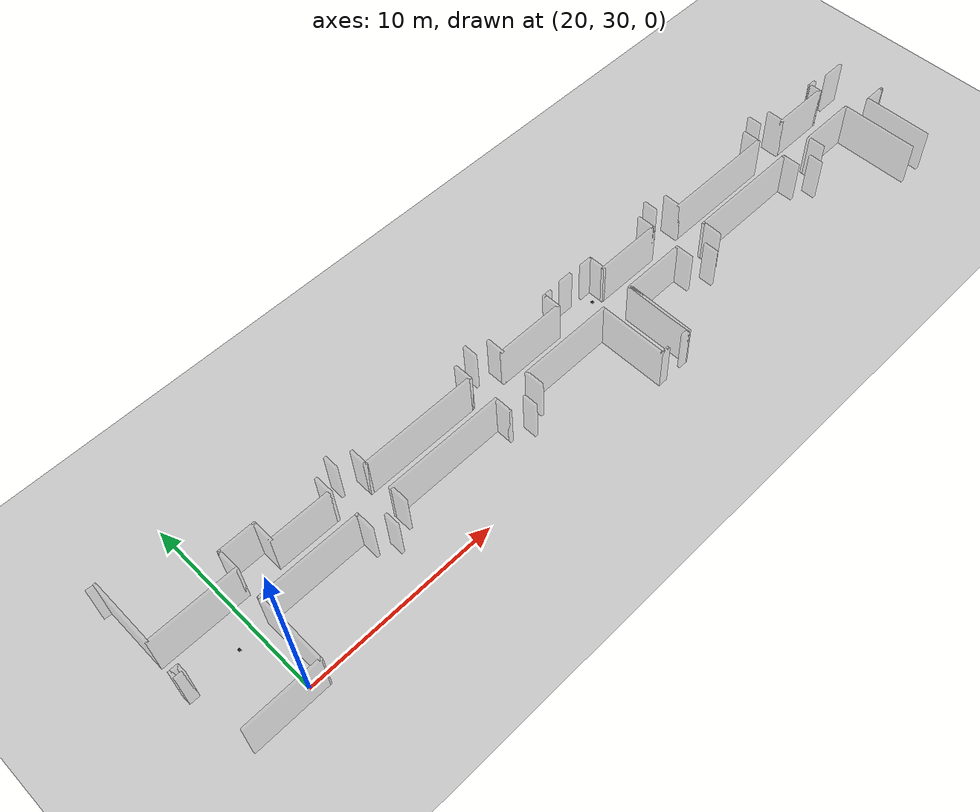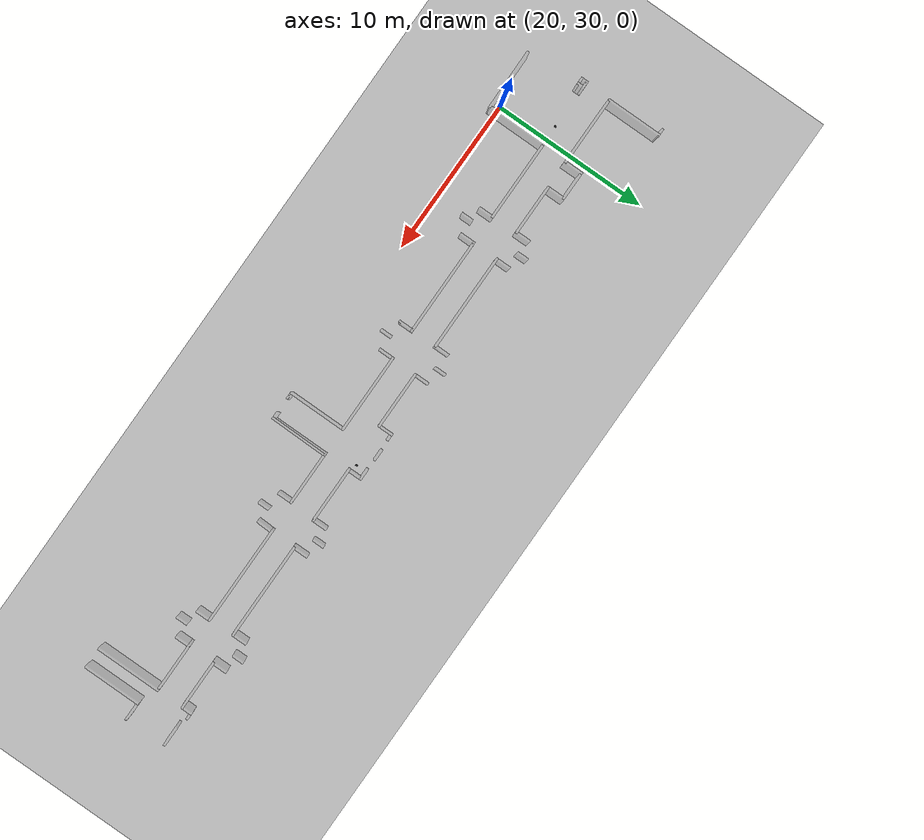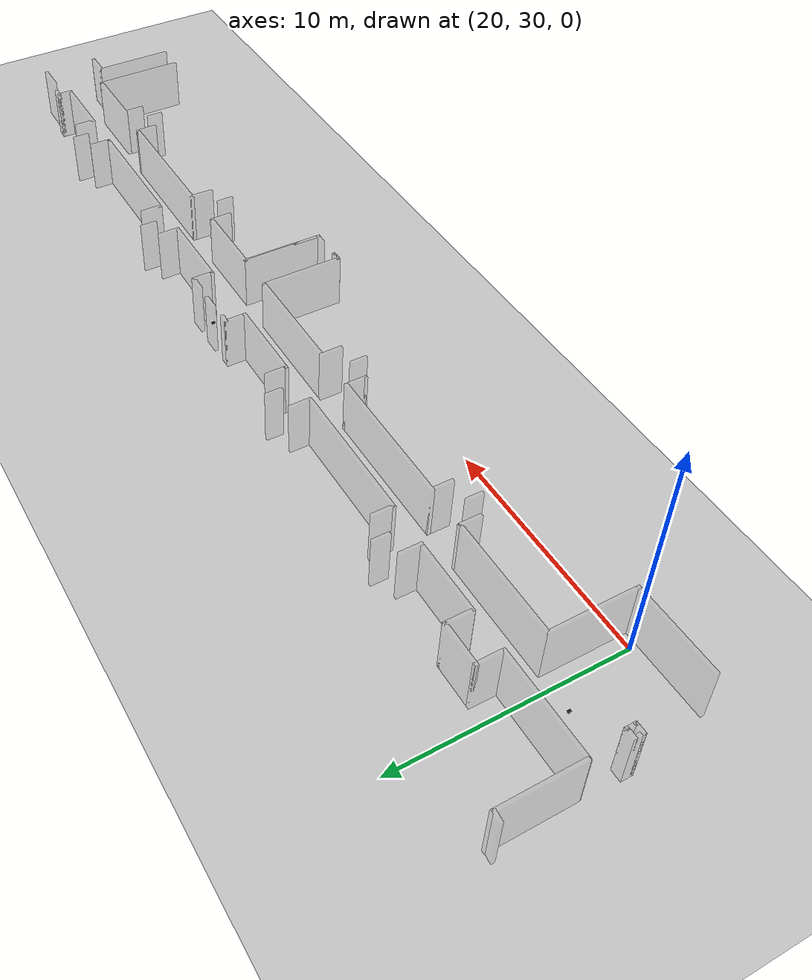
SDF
<sdf version="1.5">
 <world name="default">
  <light name="sun" type="directional">
   <pose>0 0 10 0 -0 0</pose>
   <diffuse>0.8 0.8 0.8 1</diffuse>
   <specular>0.2 0.2 0.2 1</specular>
   <attenuation>
    <range>1000</range>
    <constant>0.9</constant>
    <linear>0.01</linear>
    <quadratic>0.001</quadratic>
   </attenuation>
   <direction>-0.5 0.1 -0.9</direction>
  </light>
  <include><uri>model://ground_plane</uri></include>
  <include>
   <pose>38.75 33.8 0 0 0 0</pose>
   <static>true</static>
   <name>corridorJ</name>
   <uri>model://corridorJ</uri>
  </include>
  <include><pose>19.05 33.3 0.05 0 0 0</pose><name>dock_dev</name><uri>model://turtlebot2_dock</uri></include>
  <include><pose>42 35.2 0.05 0 0 0</pose><name>dock_prod</name><uri>model://turtlebot2_dock</uri></include>
 </world>
</sdf>

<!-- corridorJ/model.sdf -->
<sdf version='1.5'>
  <model name='aileJ'>
    <pose>0.106935 -0.141934 0 0 -0 0</pose>
    <link name='Wall_0'>
      <collision name='Wall_0_Collision'>
        <geometry>
          <box>
            <size>3.92 0.15 2.5</size>
          </box>
        </geometry>
        <pose>0 0 1.25 0 -0 0</pose>
      </collision>
      <visual name='Wall_0_Visual'>
        <pose>0 0 1.25 0 -0 0</pose>
	<transparency>0.8</transparency>
        <geometry>
          <box>
            <size>3.92 0.15 2.5</size>
          </box>
        </geometry>
        <material>
          <script>
            <uri>file://media/materials/scripts/gazebo.material</uri>
            <name>Gazebo/Grey</name>
          </script>
          <ambient>1 1 1 1</ambient>
        </material>
      </visual>
      <velocity_decay>
        <linear>0</linear>
        <angular>0</angular>
      </velocity_decay>
      <pose>-19.9619 -4.21307 0 0 -0 0.007957</pose>
    </link>
    <link name='Wall_1'>
      <collision name='Wall_1_Collision'>
        <geometry>
          <box>
            <size>3.89 0.15 2.5</size>
          </box>
        </geometry>
        <pose>0 0 1.25 0 -0 0</pose>
      </collision>
      <visual name='Wall_1_Visual'>
        <pose>0 0 1.25 0 -0 0</pose>
	<transparency>0.8</transparency>
        <geometry>
          <box>
            <size>3.89 0.15 2.5</size>
          </box>
        </geometry>
        <material>
          <script>
            <uri>file://media/materials/scripts/gazebo.material</uri>
            <name>Gazebo/Grey</name>
          </script>
          <ambient>1 1 1 1</ambient>
        </material>
      </visual>
      <velocity_decay>
        <linear>0</linear>
        <angular>0</angular>
      </velocity_decay>
      <pose>-18.0769 -2.32807 0 0 -0 1.5708</pose>
    </link>
    <link name='Wall_101'>
      <collision name='Wall_101_Collision'>
        <geometry>
          <box>
            <size>1 0.15 2.5</size>
          </box>
        </geometry>
        <pose>0 0 1.25 0 -0 0</pose>
      </collision>
      <visual name='Wall_101_Visual'>
        <pose>0 0 1.25 0 -0 0</pose>
	<transparency>0.8</transparency>
        <geometry>
          <box>
            <size>1 0.15 2.5</size>
          </box>
        </geometry>
        <material>
          <script>
            <uri>file://media/materials/scripts/gazebo.material</uri>
            <name>Gazebo/Grey</name>
          </script>
          <ambient>1 1 1 1</ambient>
        </material>
      </visual>
      <velocity_decay>
        <linear>0</linear>
        <angular>0</angular>
      </velocity_decay>
      <pose>9.10307 1.59693 0 0 0 -1.5708</pose>
    </link>
    <link name='Wall_103'>
      <collision name='Wall_103_Collision'>
        <geometry>
          <box>
            <size>6.25 0.15 2.5</size>
          </box>
        </geometry>
        <pose>0 0 1.25 0 -0 0</pose>
      </collision>
      <visual name='Wall_103_Visual'>
        <pose>0 0 1.25 0 -0 0</pose>
	<transparency>0.8</transparency>
        <geometry>
          <box>
            <size>6.25 0.15 2.5</size>
          </box>
        </geometry>
        <material>
          <script>
            <uri>file://media/materials/scripts/gazebo.material</uri>
            <name>Gazebo/Grey</name>
          </script>
          <ambient>1 1 1 1</ambient>
        </material>
      </visual>
      <velocity_decay>
        <linear>0</linear>
        <angular>0</angular>
      </velocity_decay>
      <pose>12.1531 1.17193 0 0 -0 0</pose>
    </link>
    <link name='Wall_104'>
      <collision name='Wall_104_Collision'>
        <geometry>
          <box>
            <size>1 0.15 2.5</size>
          </box>
        </geometry>
        <pose>0 0 1.25 0 -0 0</pose>
      </collision>
      <visual name='Wall_104_Visual'>
        <pose>0 0 1.25 0 -0 0</pose>
	<transparency>0.8</transparency>
        <geometry>
          <box>
            <size>1 0.15 2.5</size>
          </box>
        </geometry>
        <material>
          <script>
            <uri>file://media/materials/scripts/gazebo.material</uri>
            <name>Gazebo/Grey</name>
          </script>
          <ambient>1 1 1 1</ambient>
        </material>
      </visual>
      <velocity_decay>
        <linear>0</linear>
        <angular>0</angular>
      </velocity_decay>
      <pose>15.2031 1.59693 0 0 -0 1.5708</pose>
    </link>
    <link name='Wall_106'>
      <collision name='Wall_106_Collision'>
        <geometry>
          <box>
            <size>0.75 0.15 2.5</size>
          </box>
        </geometry>
        <pose>0 0 1.25 0 -0 0</pose>
      </collision>
      <visual name='Wall_106_Visual'>
        <pose>0 0 1.25 0 -0 0</pose>
	<transparency>0.8</transparency>
        <geometry>
          <box>
            <size>0.75 0.15 2.5</size>
          </box>
        </geometry>
        <material>
          <script>
            <uri>file://media/materials/scripts/gazebo.material</uri>
            <name>Gazebo/Grey</name>
          </script>
          <ambient>1 1 1 1</ambient>
        </material>
      </visual>
      <velocity_decay>
        <linear>0</linear>
        <angular>0</angular>
      </velocity_decay>
      <pose>16.1831 2.21193 0 0 -0 1.5708</pose>
    </link>
    <link name='Wall_11'>
      <collision name='Wall_11_Collision'>
        <geometry>
          <box>
            <size>0.5 0.15 2.5</size>
          </box>
        </geometry>
        <pose>0 0 1.25 0 -0 0</pose>
      </collision>
      <visual name='Wall_11_Visual'>
        <pose>0 0 1.25 0 -0 0</pose>
	<transparency>0.8</transparency>
        <geometry>
          <box>
            <size>0.5 0.15 2.5</size>
          </box>
        </geometry>
        <material>
          <script>
            <uri>file://media/materials/scripts/gazebo.material</uri>
            <name>Gazebo/Grey</name>
          </script>
          <ambient>1 1 1 1</ambient>
        </material>
      </visual>
      <velocity_decay>
        <linear>0</linear>
        <angular>0</angular>
      </velocity_decay>
      <pose>-22.2319 -0.468066 0 0 -0 0</pose>
    </link>
    <link name='Wall_110'>
      <collision name='Wall_110_Collision'>
        <geometry>
          <box>
            <size>1 0.15 2.5</size>
          </box>
        </geometry>
        <pose>0 0 1.25 0 -0 0</pose>
      </collision>
      <visual name='Wall_110_Visual'>
        <pose>0 0 1.25 0 -0 0</pose>
	<transparency>0.8</transparency>
        <geometry>
          <box>
            <size>1 0.15 2.5</size>
          </box>
        </geometry>
        <material>
          <script>
            <uri>file://media/materials/scripts/gazebo.material</uri>
            <name>Gazebo/Grey</name>
          </script>
          <ambient>1 1 1 1</ambient>
        </material>
      </visual>
      <velocity_decay>
        <linear>0</linear>
        <angular>0</angular>
      </velocity_decay>
      <pose>17.1831 1.60693 0 0 0 -1.5708</pose>
    </link>
    <link name='Wall_111'>
      <collision name='Wall_111_Collision'>
        <geometry>
          <box>
            <size>3.25 0.15 2.5</size>
          </box>
        </geometry>
        <pose>0 0 1.25 0 -0 0</pose>
      </collision>
      <visual name='Wall_111_Visual'>
        <pose>0 0 1.25 0 -0 0</pose>
	<transparency>0.8</transparency>
        <geometry>
          <box>
            <size>3.25 0.15 2.5</size>
          </box>
        </geometry>
        <material>
          <script>
            <uri>file://media/materials/scripts/gazebo.material</uri>
            <name>Gazebo/Grey</name>
          </script>
          <ambient>1 1 1 1</ambient>
        </material>
      </visual>
      <velocity_decay>
        <linear>0</linear>
        <angular>0</angular>
      </velocity_decay>
      <pose>18.7331 1.18193 0 0 -0 0</pose>
    </link>
    <link name='Wall_112'>
      <collision name='Wall_112_Collision'>
        <geometry>
          <box>
            <size>0.75 0.15 2.5</size>
          </box>
        </geometry>
        <pose>0 0 1.25 0 -0 0</pose>
      </collision>
      <visual name='Wall_112_Visual'>
        <pose>0 0 1.25 0 -0 0</pose>
	<transparency>0.8</transparency>
        <geometry>
          <box>
            <size>0.75 0.15 2.5</size>
          </box>
        </geometry>
        <material>
          <script>
            <uri>file://media/materials/scripts/gazebo.material</uri>
            <name>Gazebo/Grey</name>
          </script>
          <ambient>1 1 1 1</ambient>
        </material>
      </visual>
      <velocity_decay>
        <linear>0</linear>
        <angular>0</angular>
      </velocity_decay>
      <pose>20.2831 1.48193 0 0 -0 1.5708</pose>
    </link>
    <link name='Wall_113'>
      <collision name='Wall_113_Collision'>
        <geometry>
          <box>
            <size>0.5 0.15 2.5</size>
          </box>
        </geometry>
        <pose>0 0 1.25 0 -0 0</pose>
      </collision>
      <visual name='Wall_113_Visual'>
        <pose>0 0 1.25 0 -0 0</pose>
	<transparency>0.8</transparency>
        <geometry>
          <box>
            <size>0.5 0.15 2.5</size>
          </box>
        </geometry>
        <material>
          <script>
            <uri>file://media/materials/scripts/gazebo.material</uri>
            <name>Gazebo/Grey</name>
          </script>
          <ambient>1 1 1 1</ambient>
        </material>
      </visual>
      <velocity_decay>
        <linear>0</linear>
        <angular>0</angular>
      </velocity_decay>
      <pose>20.4581 1.78193 0 0 -0 0</pose>
    </link>
    <link name='Wall_115'>
      <collision name='Wall_115_Collision'>
        <geometry>
          <box>
            <size>1.25 0.15 2.5</size>
          </box>
        </geometry>
        <pose>0 0 1.25 0 -0 0</pose>
      </collision>
      <visual name='Wall_115_Visual'>
        <pose>0 0 1.25 0 -0 0</pose>
	<transparency>0.8</transparency>
        <geometry>
          <box>
            <size>1.25 0.15 2.5</size>
          </box>
        </geometry>
        <material>
          <script>
            <uri>file://media/materials/scripts/gazebo.material</uri>
            <name>Gazebo/Grey</name>
          </script>
          <ambient>1 1 1 1</ambient>
        </material>
      </visual>
      <velocity_decay>
        <linear>0</linear>
        <angular>0</angular>
      </velocity_decay>
      <pose>22.0531 1.58193 0 0 -0 3.14159</pose>
    </link>
    <link name='Wall_12'>
      <collision name='Wall_12_Collision'>
        <geometry>
          <box>
            <size>0.5 0.15 2.5</size>
          </box>
        </geometry>
        <pose>0 0 1.25 0 -0 0</pose>
      </collision>
      <visual name='Wall_12_Visual'>
        <pose>0 0 1.25 0 -0 0</pose>
	<transparency>0.8</transparency>
        <geometry>
          <box>
            <size>0.5 0.15 2.5</size>
          </box>
        </geometry>
        <material>
          <script>
            <uri>file://media/materials/scripts/gazebo.material</uri>
            <name>Gazebo/Grey</name>
          </script>
          <ambient>1 1 1 1</ambient>
        </material>
      </visual>
      <velocity_decay>
        <linear>0</linear>
        <angular>0</angular>
      </velocity_decay>
      <pose>-22.0569 -0.643066 0 0 0 -1.5708</pose>
    </link>
    <link name='Wall_13'>
      <collision name='Wall_13_Collision'>
        <geometry>
          <box>
            <size>0.5 0.15 2.5</size>
          </box>
        </geometry>
        <pose>0 0 1.25 0 -0 0</pose>
      </collision>
      <visual name='Wall_13_Visual'>
        <pose>0 0 1.25 0 -0 0</pose>
	<transparency>0.8</transparency>
        <geometry>
          <box>
            <size>0.5 0.15 2.5</size>
          </box>
        </geometry>
        <material>
          <script>
            <uri>file://media/materials/scripts/gazebo.material</uri>
            <name>Gazebo/Grey</name>
          </script>
          <ambient>1 1 1 1</ambient>
        </material>
      </visual>
      <velocity_decay>
        <linear>0</linear>
        <angular>0</angular>
      </velocity_decay>
      <pose>-22.2319 -0.818066 0 0 -0 3.14159</pose>
    </link>
    <link name='Wall_14'>
      <collision name='Wall_14_Collision'>
        <geometry>
          <box>
            <size>0.5 0.15 2.5</size>
          </box>
        </geometry>
        <pose>0 0 1.25 0 -0 0</pose>
      </collision>
      <visual name='Wall_14_Visual'>
        <pose>0 0 1.25 0 -0 0</pose>
	<transparency>0.8</transparency>
        <geometry>
          <box>
            <size>0.5 0.15 2.5</size>
          </box>
        </geometry>
        <material>
          <script>
            <uri>file://media/materials/scripts/gazebo.material</uri>
            <name>Gazebo/Grey</name>
          </script>
          <ambient>1 1 1 1</ambient>
        </material>
      </visual>
      <velocity_decay>
        <linear>0</linear>
        <angular>0</angular>
      </velocity_decay>
      <pose>-22.4069 -0.643066 0 0 -0 1.5708</pose>
    </link>
    <link name='Wall_16'>
      <collision name='Wall_16_Collision'>
        <geometry>
          <box>
            <size>1 0.15 2.5</size>
          </box>
        </geometry>
        <pose>0 0 1.25 0 -0 0</pose>
      </collision>
      <visual name='Wall_16_Visual'>
        <pose>0 0 1.25 0 -0 0</pose>
	<transparency>0.8</transparency>
        <geometry>
          <box>
            <size>1 0.15 2.5</size>
          </box>
        </geometry>
        <material>
          <script>
            <uri>file://media/materials/scripts/gazebo.material</uri>
            <name>Gazebo/Grey</name>
          </script>
          <ambient>1 1 1 1</ambient>
        </material>
      </visual>
      <velocity_decay>
        <linear>0</linear>
        <angular>0</angular>
      </velocity_decay>
      <pose>-11.1369 -0.903066 0 0 -0 1.5708</pose>
    </link>
    <link name='Wall_17'>
      <collision name='Wall_17_Collision'>
        <geometry>
          <box>
            <size>6.27 0.15 2.5</size>
          </box>
        </geometry>
        <pose>0 0 1.25 0 -0 0</pose>
      </collision>
      <visual name='Wall_17_Visual'>
        <pose>0 0 1.25 0 -0 0</pose>
	<transparency>0.8</transparency>
        <geometry>
          <box>
            <size>6.27 0.15 2.5</size>
          </box>
        </geometry>
        <material>
          <script>
            <uri>file://media/materials/scripts/gazebo.material</uri>
            <name>Gazebo/Grey</name>
          </script>
          <ambient>1 1 1 1</ambient>
        </material>
      </visual>
      <velocity_decay>
        <linear>0</linear>
        <angular>0</angular>
      </velocity_decay>
      <pose>-8.07693 -0.478066 0 0 -0 0</pose>
    </link>
    <link name='Wall_18'>
      <collision name='Wall_18_Collision'>
        <geometry>
          <box>
            <size>1 0.15 2.5</size>
          </box>
        </geometry>
        <pose>0 0 1.25 0 -0 0</pose>
      </collision>
      <visual name='Wall_18_Visual'>
        <pose>0 0 1.25 0 -0 0</pose>
	<transparency>0.8</transparency>
        <geometry>
          <box>
            <size>1 0.15 2.5</size>
          </box>
        </geometry>
        <material>
          <script>
            <uri>file://media/materials/scripts/gazebo.material</uri>
            <name>Gazebo/Grey</name>
          </script>
          <ambient>1 1 1 1</ambient>
        </material>
      </visual>
      <velocity_decay>
        <linear>0</linear>
        <angular>0</angular>
      </velocity_decay>
      <pose>-5.01693 -0.903066 0 0 0 -1.5708</pose>
    </link>
    <link name='Wall_19'>
      <collision name='Wall_19_Collision'>
        <geometry>
          <box>
            <size>0.15 0.15 2.5</size>
          </box>
        </geometry>
        <pose>0 0 1.25 0 -0 0</pose>
      </collision>
      <visual name='Wall_19_Visual'>
        <pose>0 0 1.25 0 -0 0</pose>
	<transparency>0.8</transparency>
        <geometry>
          <box>
            <size>0.15 0.15 2.5</size>
          </box>
        </geometry>
        <material>
          <script>
            <uri>file://media/materials/scripts/gazebo.material</uri>
            <name>Gazebo/Grey</name>
          </script>
          <ambient>1 1 1 1</ambient>
        </material>
      </visual>
      <velocity_decay>
        <linear>0</linear>
        <angular>0</angular>
      </velocity_decay>
      <pose>-5.01693 -1.32807 0 0 -0 0</pose>
    </link>
    <link name='Wall_21'>
      <collision name='Wall_21_Collision'>
        <geometry>
          <box>
            <size>0.75 0.15 2.5</size>
          </box>
        </geometry>
        <pose>0 0 1.25 0 -0 0</pose>
      </collision>
      <visual name='Wall_21_Visual'>
        <pose>0 0 1.25 0 -0 0</pose>
	<transparency>0.8</transparency>
        <geometry>
          <box>
            <size>0.75 0.15 2.5</size>
          </box>
        </geometry>
        <material>
          <script>
            <uri>file://media/materials/scripts/gazebo.material</uri>
            <name>Gazebo/Grey</name>
          </script>
          <ambient>1 1 1 1</ambient>
        </material>
      </visual>
      <velocity_decay>
        <linear>0</linear>
        <angular>0</angular>
      </velocity_decay>
      <pose>-4.02693 -1.60807 0 0 -0 1.5708</pose>
    </link>
    <link name='Wall_23'>
      <collision name='Wall_23_Collision'>
        <geometry>
          <box>
            <size>1.01 0.15 2.5</size>
          </box>
        </geometry>
        <pose>0 0 1.25 0 -0 0</pose>
      </collision>
      <visual name='Wall_23_Visual'>
        <pose>0 0 1.25 0 -0 0</pose>
	<transparency>0.8</transparency>
        <geometry>
          <box>
            <size>1.01 0.15 2.5</size>
          </box>
        </geometry>
        <material>
          <script>
            <uri>file://media/materials/scripts/gazebo.material</uri>
            <name>Gazebo/Grey</name>
          </script>
          <ambient>1 1 1 1</ambient>
        </material>
      </visual>
      <velocity_decay>
        <linear>0</linear>
        <angular>0</angular>
      </velocity_decay>
      <pose>-3.05694 -0.898066 0 0 -0 1.5708</pose>
    </link>
    <link name='Wall_24'>
      <collision name='Wall_24_Collision'>
        <geometry>
          <box>
            <size>5.13 0.15 2.5</size>
          </box>
        </geometry>
        <pose>0 0 1.25 0 -0 0</pose>
      </collision>
      <visual name='Wall_24_Visual'>
        <pose>0 0 1.25 0 -0 0</pose>
	<transparency>0.8</transparency>
        <geometry>
          <box>
            <size>5.13 0.15 2.5</size>
          </box>
        </geometry>
        <material>
          <script>
            <uri>file://media/materials/scripts/gazebo.material</uri>
            <name>Gazebo/Grey</name>
          </script>
          <ambient>1 1 1 1</ambient>
        </material>
      </visual>
      <velocity_decay>
        <linear>0</linear>
        <angular>0</angular>
      </velocity_decay>
      <pose>-0.566935 -0.468066 0 0 -0 0</pose>
    </link>
    <link name='Wall_26'>
      <collision name='Wall_26_Collision'>
        <geometry>
          <box>
            <size>3.75 0.15 2.5</size>
          </box>
        </geometry>
        <pose>0 0 1.25 0 -0 0</pose>
      </collision>
      <visual name='Wall_26_Visual'>
        <pose>0 0 1.25 0 -0 0</pose>
	<transparency>0.8</transparency>
        <geometry>
          <box>
            <size>3.75 0.15 2.5</size>
          </box>
        </geometry>
        <material>
          <script>
            <uri>file://media/materials/scripts/gazebo.material</uri>
            <name>Gazebo/Grey</name>
          </script>
          <ambient>1 1 1 1</ambient>
        </material>
      </visual>
      <velocity_decay>
        <linear>0</linear>
        <angular>0</angular>
      </velocity_decay>
      <pose>1.92307 -2.26807 0 0 0 -1.5708</pose>
    </link>
    <link name='Wall_3'>
      <collision name='Wall_3_Collision'>
        <geometry>
          <box>
            <size>5.25 0.15 2.5</size>
          </box>
        </geometry>
        <pose>0 0 1.25 0 -0 0</pose>
      </collision>
      <visual name='Wall_3_Visual'>
        <pose>0 0 1.25 0 -0 0</pose>
	<transparency>0.8</transparency>
        <geometry>
          <box>
            <size>5.25 0.15 2.5</size>
          </box>
        </geometry>
        <material>
          <script>
            <uri>file://media/materials/scripts/gazebo.material</uri>
            <name>Gazebo/Grey</name>
          </script>
          <ambient>1 1 1 1</ambient>
        </material>
      </visual>
      <velocity_decay>
        <linear>0</linear>
        <angular>0</angular>
      </velocity_decay>
      <pose>-15.5269 -0.458066 0 0 -0 0</pose>
    </link>
    <link name='Wall_32'>
      <collision name='Wall_32_Collision'>
        <geometry>
          <box>
            <size>0.5 0.15 2.5</size>
          </box>
        </geometry>
        <pose>0 0 1.25 0 -0 0</pose>
      </collision>
      <visual name='Wall_32_Visual'>
        <pose>0 0 1.25 0 -0 0</pose>
	<transparency>0.8</transparency>
        <geometry>
          <box>
            <size>0.5 0.15 2.5</size>
          </box>
        </geometry>
        <material>
          <script>
            <uri>file://media/materials/scripts/gazebo.material</uri>
            <name>Gazebo/Grey</name>
          </script>
          <ambient>1 1 1 1</ambient>
        </material>
      </visual>
      <velocity_decay>
        <linear>0</linear>
        <angular>0</angular>
      </velocity_decay>
      <pose>2.10806 -4.07806 0 0 -0 0</pose>
    </link>
    <link name='Wall_33'>
      <collision name='Wall_33_Collision'>
        <geometry>
          <box>
            <size>0.5 0.15 2.5</size>
          </box>
        </geometry>
        <pose>0 0 1.25 0 -0 0</pose>
      </collision>
      <visual name='Wall_33_Visual'>
        <pose>0 0 1.25 0 -0 0</pose>
	<transparency>0.8</transparency>
        <geometry>
          <box>
            <size>0.5 0.15 2.5</size>
          </box>
        </geometry>
        <material>
          <script>
            <uri>file://media/materials/scripts/gazebo.material</uri>
            <name>Gazebo/Grey</name>
          </script>
          <ambient>1 1 1 1</ambient>
        </material>
      </visual>
      <velocity_decay>
        <linear>0</linear>
        <angular>0</angular>
      </velocity_decay>
      <pose>2.10806 -4.07806 0 0 -0 3.14159</pose>
    </link>
    <link name='Wall_35'>
      <collision name='Wall_35_Collision'>
        <geometry>
          <box>
            <size>3.65023 0.15 2.5</size>
          </box>
        </geometry>
        <pose>0 0 1.25 0 -0 0</pose>
      </collision>
      <visual name='Wall_35_Visual'>
        <pose>0 0 1.25 0 -0 0</pose>
	<transparency>0.8</transparency>
        <geometry>
          <box>
            <size>3.65023 0.15 2.5</size>
          </box>
        </geometry>
        <material>
          <script>
            <uri>file://media/materials/scripts/gazebo.material</uri>
            <name>Gazebo/Grey</name>
          </script>
          <ambient>1 1 1 1</ambient>
        </material>
      </visual>
      <velocity_decay>
        <linear>0</linear>
        <angular>0</angular>
      </velocity_decay>
      <pose>3.72307 -2.33807 0 0 -0 1.55937</pose>
    </link>
    <link name='Wall_37'>
      <collision name='Wall_37_Collision'>
        <geometry>
          <box>
            <size>3.75 0.15 2.5</size>
          </box>
        </geometry>
        <pose>0 0 1.25 0 -0 0</pose>
      </collision>
      <visual name='Wall_37_Visual'>
        <pose>0 0 1.25 0 -0 0</pose>
	<transparency>0.8</transparency>
        <geometry>
          <box>
            <size>3.75 0.15 2.5</size>
          </box>
        </geometry>
        <material>
          <script>
            <uri>file://media/materials/scripts/gazebo.material</uri>
            <name>Gazebo/Grey</name>
          </script>
          <ambient>1 1 1 1</ambient>
        </material>
      </visual>
      <velocity_decay>
        <linear>0</linear>
        <angular>0</angular>
      </velocity_decay>
      <pose>3.70307 -2.28807 0 0 -0 1.5708</pose>
    </link>
    <link name='Wall_39'>
      <collision name='Wall_39_Collision'>
        <geometry>
          <box>
            <size>0.5 0.15 2.5</size>
          </box>
        </geometry>
        <pose>0 0 1.25 0 -0 0</pose>
      </collision>
      <visual name='Wall_39_Visual'>
        <pose>0 0 1.25 0 -0 0</pose>
	<transparency>0.8</transparency>
        <geometry>
          <box>
            <size>0.5 0.15 2.5</size>
          </box>
        </geometry>
        <material>
          <script>
            <uri>file://media/materials/scripts/gazebo.material</uri>
            <name>Gazebo/Grey</name>
          </script>
          <ambient>1 1 1 1</ambient>
        </material>
      </visual>
      <velocity_decay>
        <linear>0</linear>
        <angular>0</angular>
      </velocity_decay>
      <pose>3.52806 -4.08807 0 0 -0 3.14159</pose>
    </link>
    <link name='Wall_41'>
      <collision name='Wall_41_Collision'>
        <geometry>
          <box>
            <size>3.5 0.15 2.5</size>
          </box>
        </geometry>
        <pose>0 0 1.25 0 -0 0</pose>
      </collision>
      <visual name='Wall_41_Visual'>
        <pose>0 0 1.25 0 -0 0</pose>
	<transparency>0.8</transparency>
        <geometry>
          <box>
            <size>3.5 0.15 2.5</size>
          </box>
        </geometry>
        <material>
          <script>
            <uri>file://media/materials/scripts/gazebo.material</uri>
            <name>Gazebo/Grey</name>
          </script>
          <ambient>1 1 1 1</ambient>
        </material>
      </visual>
      <velocity_decay>
        <linear>0</linear>
        <angular>0</angular>
      </velocity_decay>
      <pose>5.37807 -0.488066 0 0 -0 0</pose>
    </link>
    <link name='Wall_42'>
      <collision name='Wall_42_Collision'>
        <geometry>
          <box>
            <size>1 0.15 2.5</size>
          </box>
        </geometry>
        <pose>0 0 1.25 0 -0 0</pose>
      </collision>
      <visual name='Wall_42_Visual'>
        <pose>0 0 1.25 0 -0 0</pose>
	<transparency>0.8</transparency>
        <geometry>
          <box>
            <size>1 0.15 2.5</size>
          </box>
        </geometry>
        <material>
          <script>
            <uri>file://media/materials/scripts/gazebo.material</uri>
            <name>Gazebo/Grey</name>
          </script>
          <ambient>1 1 1 1</ambient>
        </material>
      </visual>
      <velocity_decay>
        <linear>0</linear>
        <angular>0</angular>
      </velocity_decay>
      <pose>7.05307 -0.913066 0 0 0 -1.5708</pose>
    </link>
    <link name='Wall_44'>
      <collision name='Wall_44_Collision'>
        <geometry>
          <box>
            <size>0.75 0.15 2.5</size>
          </box>
        </geometry>
        <pose>0 0 1.25 0 -0 0</pose>
      </collision>
      <visual name='Wall_44_Visual'>
        <pose>0 0 1.25 0 -0 0</pose>
	<transparency>0.8</transparency>
        <geometry>
          <box>
            <size>0.75 0.15 2.5</size>
          </box>
        </geometry>
        <material>
          <script>
            <uri>file://media/materials/scripts/gazebo.material</uri>
            <name>Gazebo/Grey</name>
          </script>
          <ambient>1 1 1 1</ambient>
        </material>
      </visual>
      <velocity_decay>
        <linear>0</linear>
        <angular>0</angular>
      </velocity_decay>
      <pose>8.13307 -1.65807 0 0 0 -1.5708</pose>
    </link>
    <link name='Wall_48'>
      <collision name='Wall_48_Collision'>
        <geometry>
          <box>
            <size>1.10047 0.15 2.5</size>
          </box>
        </geometry>
        <pose>0 0 1.25 0 -0 0</pose>
      </collision>
      <visual name='Wall_48_Visual'>
        <pose>0 0 1.25 0 -0 0</pose>
	<transparency>0.8</transparency>
        <geometry>
          <box>
            <size>1.10047 0.15 2.5</size>
          </box>
        </geometry>
        <material>
          <script>
            <uri>file://media/materials/scripts/gazebo.material</uri>
            <name>Gazebo/Grey</name>
          </script>
          <ambient>1 1 1 1</ambient>
        </material>
      </visual>
      <velocity_decay>
        <linear>0</linear>
        <angular>0</angular>
      </velocity_decay>
      <pose>9.08306 -0.903066 0 0 0 -1.61288</pose>
    </link>
    <link name='Wall_50'>
      <collision name='Wall_50_Collision'>
        <geometry>
          <box>
            <size>6.34001 0.15 2.5</size>
          </box>
        </geometry>
        <pose>0 0 1.25 0 -0 0</pose>
      </collision>
      <visual name='Wall_50_Visual'>
        <pose>0 0 1.25 0 -0 0</pose>
	<transparency>0.8</transparency>
        <geometry>
          <box>
            <size>6.34001 0.15 2.5</size>
          </box>
        </geometry>
        <material>
          <script>
            <uri>file://media/materials/scripts/gazebo.material</uri>
            <name>Gazebo/Grey</name>
          </script>
          <ambient>1 1 1 1</ambient>
        </material>
      </visual>
      <velocity_decay>
        <linear>0</linear>
        <angular>0</angular>
      </velocity_decay>
      <pose>12.1881 -0.428066 0 0 -0 0</pose>
    </link>
    <link name='Wall_53'>
      <collision name='Wall_53_Collision'>
        <geometry>
          <box>
            <size>1 0.15 2.5</size>
          </box>
        </geometry>
        <pose>0 0 1.25 0 -0 0</pose>
      </collision>
      <visual name='Wall_53_Visual'>
        <pose>0 0 1.25 0 -0 0</pose>
	<transparency>0.8</transparency>
        <geometry>
          <box>
            <size>1 0.15 2.5</size>
          </box>
        </geometry>
        <material>
          <script>
            <uri>file://media/materials/scripts/gazebo.material</uri>
            <name>Gazebo/Grey</name>
          </script>
          <ambient>1 1 1 1</ambient>
        </material>
      </visual>
      <velocity_decay>
        <linear>0</linear>
        <angular>0</angular>
      </velocity_decay>
      <pose>15.2831 -0.853066 0 0 0 -1.5708</pose>
    </link>
    <link name='Wall_55'>
      <collision name='Wall_55_Collision'>
        <geometry>
          <box>
            <size>0.75 0.15 2.5</size>
          </box>
        </geometry>
        <pose>0 0 1.25 0 -0 0</pose>
      </collision>
      <visual name='Wall_55_Visual'>
        <pose>0 0 1.25 0 -0 0</pose>
	<transparency>0.8</transparency>
        <geometry>
          <box>
            <size>0.75 0.15 2.5</size>
          </box>
        </geometry>
        <material>
          <script>
            <uri>file://media/materials/scripts/gazebo.material</uri>
            <name>Gazebo/Grey</name>
          </script>
          <ambient>1 1 1 1</ambient>
        </material>
      </visual>
      <velocity_decay>
        <linear>0</linear>
        <angular>0</angular>
      </velocity_decay>
      <pose>16.2131 -1.70807 0 0 -0 1.5708</pose>
    </link>
    <link name='Wall_57'>
      <collision name='Wall_57_Collision'>
        <geometry>
          <box>
            <size>4.25 0.15 2.5</size>
          </box>
        </geometry>
        <pose>0 0 1.25 0 -0 0</pose>
      </collision>
      <visual name='Wall_57_Visual'>
        <pose>0 0 1.25 0 -0 0</pose>
	<transparency>0.8</transparency>
        <geometry>
          <box>
            <size>4.25 0.15 2.5</size>
          </box>
        </geometry>
        <material>
          <script>
            <uri>file://media/materials/scripts/gazebo.material</uri>
            <name>Gazebo/Grey</name>
          </script>
          <ambient>1 1 1 1</ambient>
        </material>
      </visual>
      <velocity_decay>
        <linear>0</linear>
        <angular>0</angular>
      </velocity_decay>
      <pose>20.2731 -2.59807 0 0 -0 1.5708</pose>
    </link>
    <link name='Wall_59'>
      <collision name='Wall_59_Collision'>
        <geometry>
          <box>
            <size>3.25 0.15 2.5</size>
          </box>
        </geometry>
        <pose>0 0 1.25 0 -0 0</pose>
      </collision>
      <visual name='Wall_59_Visual'>
        <pose>0 0 1.25 0 -0 0</pose>
	<transparency>0.8</transparency>
        <geometry>
          <box>
            <size>3.25 0.15 2.5</size>
          </box>
        </geometry>
        <material>
          <script>
            <uri>file://media/materials/scripts/gazebo.material</uri>
            <name>Gazebo/Grey</name>
          </script>
          <ambient>1 1 1 1</ambient>
        </material>
      </visual>
      <velocity_decay>
        <linear>0</linear>
        <angular>0</angular>
      </velocity_decay>
      <pose>18.7231 -0.548066 0 0 -0 3.14159</pose>
    </link>
    <link name='Wall_61'>
      <collision name='Wall_61_Collision'>
        <geometry>
          <box>
            <size>1 0.15 2.5</size>
          </box>
        </geometry>
        <pose>0 0 1.25 0 -0 0</pose>
      </collision>
      <visual name='Wall_61_Visual'>
        <pose>0 0 1.25 0 -0 0</pose>
	<transparency>0.8</transparency>
        <geometry>
          <box>
            <size>1 0.15 2.5</size>
          </box>
        </geometry>
        <material>
          <script>
            <uri>file://media/materials/scripts/gazebo.material</uri>
            <name>Gazebo/Grey</name>
          </script>
          <ambient>1 1 1 1</ambient>
        </material>
      </visual>
      <velocity_decay>
        <linear>0</linear>
        <angular>0</angular>
      </velocity_decay>
      <pose>17.1731 -0.973066 0 0 0 -1.5708</pose>
    </link>
    <link name='Wall_63'>
      <collision name='Wall_63_Collision'>
        <geometry>
          <box>
            <size>3.75 0.15 2.5</size>
          </box>
        </geometry>
        <pose>0 0 1.25 0 -0 0</pose>
      </collision>
      <visual name='Wall_63_Visual'>
        <pose>0 0 1.25 0 -0 0</pose>
	<transparency>0.8</transparency>
        <geometry>
          <box>
            <size>3.75 0.15 2.5</size>
          </box>
        </geometry>
        <material>
          <script>
            <uri>file://media/materials/scripts/gazebo.material</uri>
            <name>Gazebo/Grey</name>
          </script>
          <ambient>1 1 1 1</ambient>
        </material>
      </visual>
      <velocity_decay>
        <linear>0</linear>
        <angular>0</angular>
      </velocity_decay>
      <pose>21.5531 -2.85807 0 0 -0 1.5708</pose>
    </link>
    <link name='Wall_64'>
      <collision name='Wall_64_Collision'>
        <geometry>
          <box>
            <size>1.25 0.15 2.5</size>
          </box>
        </geometry>
        <pose>0 0 1.25 0 -0 0</pose>
      </collision>
      <visual name='Wall_64_Visual'>
        <pose>0 0 1.25 0 -0 0</pose>
	<transparency>0.8</transparency>
        <geometry>
          <box>
            <size>1.25 0.15 2.5</size>
          </box>
        </geometry>
        <material>
          <script>
            <uri>file://media/materials/scripts/gazebo.material</uri>
            <name>Gazebo/Grey</name>
          </script>
          <ambient>1 1 1 1</ambient>
        </material>
      </visual>
      <velocity_decay>
        <linear>0</linear>
        <angular>0</angular>
      </velocity_decay>
      <pose>22.1031 -1.05807 0 0 -0 0</pose>
    </link>
    <link name='Wall_65'>
      <collision name='Wall_65_Collision'>
        <geometry>
          <box>
            <size>0.16 0.15 2.5</size>
          </box>
        </geometry>
        <pose>0 0 1.25 0 -0 0</pose>
      </collision>
      <visual name='Wall_65_Visual'>
        <pose>0 0 1.25 0 -0 0</pose>
	<transparency>0.8</transparency>
        <geometry>
          <box>
            <size>0.16 0.15 2.5</size>
          </box>
        </geometry>
        <material>
          <script>
            <uri>file://media/materials/scripts/gazebo.material</uri>
            <name>Gazebo/Grey</name>
          </script>
          <ambient>1 1 1 1</ambient>
        </material>
      </visual>
      <velocity_decay>
        <linear>0</linear>
        <angular>0</angular>
      </velocity_decay>
      <pose>22.6581 -1.05807 0 0 -0 0</pose>
    </link>
    <link name='Wall_67'>
      <collision name='Wall_67_Collision'>
        <geometry>
          <box>
            <size>0.501283 0.15 2.5</size>
          </box>
        </geometry>
        <pose>0 0 1.25 0 -0 0</pose>
      </collision>
      <visual name='Wall_67_Visual'>
        <pose>0 0 1.25 0 -0 0</pose>
	<transparency>0.8</transparency>
        <geometry>
          <box>
            <size>0.501283 0.15 2.5</size>
          </box>
        </geometry>
        <material>
          <script>
            <uri>file://media/materials/scripts/gazebo.material</uri>
            <name>Gazebo/Grey</name>
          </script>
          <ambient>1 1 1 1</ambient>
        </material>
      </visual>
      <velocity_decay>
        <linear>0</linear>
        <angular>0</angular>
      </velocity_decay>
      <pose>-22.4819 4.63693 0 0 0 -0.085505</pose>
    </link>
    <link name='Wall_68'>
      <collision name='Wall_68_Collision'>
        <geometry>
          <box>
            <size>3.59 0.15 2.5</size>
          </box>
        </geometry>
        <pose>0 0 1.25 0 -0 0</pose>
      </collision>
      <visual name='Wall_68_Visual'>
        <pose>0 0 1.25 0 -0 0</pose>
	<transparency>0.8</transparency>
        <geometry>
          <box>
            <size>3.59 0.15 2.5</size>
          </box>
        </geometry>
        <material>
          <script>
            <uri>file://media/materials/scripts/gazebo.material</uri>
            <name>Gazebo/Grey</name>
          </script>
          <ambient>1 1 1 1</ambient>
        </material>
      </visual>
      <velocity_decay>
        <linear>0</linear>
        <angular>0</angular>
      </velocity_decay>
      <pose>-22.3069 2.93193 0 0 0 -1.5708</pose>
    </link>
    <link name='Wall_69'>
      <collision name='Wall_69_Collision'>
        <geometry>
          <box>
            <size>4.5 0.15 2.5</size>
          </box>
        </geometry>
        <pose>0 0 1.25 0 -0 0</pose>
      </collision>
      <visual name='Wall_69_Visual'>
        <pose>0 0 1.25 0 -0 0</pose>
	<transparency>0.8</transparency>
        <geometry>
          <box>
            <size>4.5 0.15 2.5</size>
          </box>
        </geometry>
        <material>
          <script>
            <uri>file://media/materials/scripts/gazebo.material</uri>
            <name>Gazebo/Grey</name>
          </script>
          <ambient>1 1 1 1</ambient>
        </material>
      </visual>
      <velocity_decay>
        <linear>0</linear>
        <angular>0</angular>
      </velocity_decay>
      <pose>-20.1319 1.18193 0 0 -0 0</pose>
    </link>
    <link name='Wall_7'>
      <collision name='Wall_7_Collision'>
        <geometry>
          <box>
            <size>1 0.15 2.5</size>
          </box>
        </geometry>
        <pose>0 0 1.25 0 -0 0</pose>
      </collision>
      <visual name='Wall_7_Visual'>
        <pose>0 0 1.25 0 -0 0</pose>
	<transparency>0.8</transparency>
        <geometry>
          <box>
            <size>1 0.15 2.5</size>
          </box>
        </geometry>
        <material>
          <script>
            <uri>file://media/materials/scripts/gazebo.material</uri>
            <name>Gazebo/Grey</name>
          </script>
          <ambient>1 1 1 1</ambient>
        </material>
      </visual>
      <velocity_decay>
        <linear>0</linear>
        <angular>0</angular>
      </velocity_decay>
      <pose>-12.9769 -0.883066 0 0 0 -1.5708</pose>
    </link>
    <link name='Wall_71'>
      <collision name='Wall_71_Collision'>
        <geometry>
          <box>
            <size>1.25 0.15 2.5</size>
          </box>
        </geometry>
        <pose>0 0 1.25 0 -0 0</pose>
      </collision>
      <visual name='Wall_71_Visual'>
        <pose>0 0 1.25 0 -0 0</pose>
	<transparency>0.8</transparency>
        <geometry>
          <box>
            <size>1.25 0.15 2.5</size>
          </box>
        </geometry>
        <material>
          <script>
            <uri>file://media/materials/scripts/gazebo.material</uri>
            <name>Gazebo/Grey</name>
          </script>
          <ambient>1 1 1 1</ambient>
        </material>
      </visual>
      <velocity_decay>
        <linear>0</linear>
        <angular>0</angular>
      </velocity_decay>
      <pose>-17.9569 1.73193 0 0 -0 1.5708</pose>
    </link>
    <link name='Wall_72'>
      <collision name='Wall_72_Collision'>
        <geometry>
          <box>
            <size>1.92 0.15 2.5</size>
          </box>
        </geometry>
        <pose>0 0 1.25 0 -0 0</pose>
      </collision>
      <visual name='Wall_72_Visual'>
        <pose>0 0 1.25 0 -0 0</pose>
	<transparency>0.8</transparency>
        <geometry>
          <box>
            <size>1.92 0.15 2.5</size>
          </box>
        </geometry>
        <material>
          <script>
            <uri>file://media/materials/scripts/gazebo.material</uri>
            <name>Gazebo/Grey</name>
          </script>
          <ambient>1 1 1 1</ambient>
        </material>
      </visual>
      <velocity_decay>
        <linear>0</linear>
        <angular>0</angular>
      </velocity_decay>
      <pose>-17.0719 2.28193 0 0 -0 0</pose>
    </link>
    <link name='Wall_73'>
      <collision name='Wall_73_Collision'>
        <geometry>
          <box>
            <size>1.22 0.15 2.5</size>
          </box>
        </geometry>
        <pose>0 0 1.25 0 -0 0</pose>
      </collision>
      <visual name='Wall_73_Visual'>
        <pose>0 0 1.25 0 -0 0</pose>
	<transparency>0.8</transparency>
        <geometry>
          <box>
            <size>1.22 0.15 2.5</size>
          </box>
        </geometry>
        <material>
          <script>
            <uri>file://media/materials/scripts/gazebo.material</uri>
            <name>Gazebo/Grey</name>
          </script>
          <ambient>1 1 1 1</ambient>
        </material>
      </visual>
      <velocity_decay>
        <linear>0</linear>
        <angular>0</angular>
      </velocity_decay>
      <pose>-16.1869 1.74693 0 0 0 -1.5708</pose>
    </link>
    <link name='Wall_74'>
      <collision name='Wall_74_Collision'>
        <geometry>
          <box>
            <size>3.29 0.15 2.5</size>
          </box>
        </geometry>
        <pose>0 0 1.25 0 -0 0</pose>
      </collision>
      <visual name='Wall_74_Visual'>
        <pose>0 0 1.25 0 -0 0</pose>
	<transparency>0.8</transparency>
        <geometry>
          <box>
            <size>3.29 0.15 2.5</size>
          </box>
        </geometry>
        <material>
          <script>
            <uri>file://media/materials/scripts/gazebo.material</uri>
            <name>Gazebo/Grey</name>
          </script>
          <ambient>1 1 1 1</ambient>
        </material>
      </visual>
      <velocity_decay>
        <linear>0</linear>
        <angular>0</angular>
      </velocity_decay>
      <pose>-14.6169 1.20193 0 0 -0 0</pose>
    </link>
    <link name='Wall_77'>
      <collision name='Wall_77_Collision'>
        <geometry>
          <box>
            <size>1 0.15 2.5</size>
          </box>
        </geometry>
        <pose>0 0 1.25 0 -0 0</pose>
      </collision>
      <visual name='Wall_77_Visual'>
        <pose>0 0 1.25 0 -0 0</pose>
	<transparency>0.8</transparency>
        <geometry>
          <box>
            <size>1 0.15 2.5</size>
          </box>
        </geometry>
        <material>
          <script>
            <uri>file://media/materials/scripts/gazebo.material</uri>
            <name>Gazebo/Grey</name>
          </script>
          <ambient>1 1 1 1</ambient>
        </material>
      </visual>
      <velocity_decay>
        <linear>0</linear>
        <angular>0</angular>
      </velocity_decay>
      <pose>-13.0469 1.62693 0 0 -0 1.5708</pose>
    </link>
    <link name='Wall_79'>
      <collision name='Wall_79_Collision'>
        <geometry>
          <box>
            <size>0.75 0.15 2.5</size>
          </box>
        </geometry>
        <pose>0 0 1.25 0 -0 0</pose>
      </collision>
      <visual name='Wall_79_Visual'>
        <pose>0 0 1.25 0 -0 0</pose>
	<transparency>0.8</transparency>
        <geometry>
          <box>
            <size>0.75 0.15 2.5</size>
          </box>
        </geometry>
        <material>
          <script>
            <uri>file://media/materials/scripts/gazebo.material</uri>
            <name>Gazebo/Grey</name>
          </script>
          <ambient>1 1 1 1</ambient>
        </material>
      </visual>
      <velocity_decay>
        <linear>0</linear>
        <angular>0</angular>
      </velocity_decay>
      <pose>-12.1269 2.26193 0 0 0 -1.5708</pose>
    </link>
    <link name='Wall_81'>
      <collision name='Wall_81_Collision'>
        <geometry>
          <box>
            <size>1 0.15 2.5</size>
          </box>
        </geometry>
        <pose>0 0 1.25 0 -0 0</pose>
      </collision>
      <visual name='Wall_81_Visual'>
        <pose>0 0 1.25 0 -0 0</pose>
	<transparency>0.8</transparency>
        <geometry>
          <box>
            <size>1 0.15 2.5</size>
          </box>
        </geometry>
        <material>
          <script>
            <uri>file://media/materials/scripts/gazebo.material</uri>
            <name>Gazebo/Grey</name>
          </script>
          <ambient>1 1 1 1</ambient>
        </material>
      </visual>
      <velocity_decay>
        <linear>0</linear>
        <angular>0</angular>
      </velocity_decay>
      <pose>-11.1369 1.57693 0 0 0 -1.5708</pose>
    </link>
    <link name='Wall_82'>
      <collision name='Wall_82_Collision'>
        <geometry>
          <box>
            <size>6.25 0.15 2.5</size>
          </box>
        </geometry>
        <pose>0 0 1.25 0 -0 0</pose>
      </collision>
      <visual name='Wall_82_Visual'>
        <pose>0 0 1.25 0 -0 0</pose>
	<transparency>0.8</transparency>
        <geometry>
          <box>
            <size>6.25 0.15 2.5</size>
          </box>
        </geometry>
        <material>
          <script>
            <uri>file://media/materials/scripts/gazebo.material</uri>
            <name>Gazebo/Grey</name>
          </script>
          <ambient>1 1 1 1</ambient>
        </material>
      </visual>
      <velocity_decay>
        <linear>0</linear>
        <angular>0</angular>
      </velocity_decay>
      <pose>-8.08694 1.15193 0 0 -0 0</pose>
    </link>
    <link name='Wall_83'>
      <collision name='Wall_83_Collision'>
        <geometry>
          <box>
            <size>1 0.15 2.5</size>
          </box>
        </geometry>
        <pose>0 0 1.25 0 -0 0</pose>
      </collision>
      <visual name='Wall_83_Visual'>
        <pose>0 0 1.25 0 -0 0</pose>
	<transparency>0.8</transparency>
        <geometry>
          <box>
            <size>1 0.15 2.5</size>
          </box>
        </geometry>
        <material>
          <script>
            <uri>file://media/materials/scripts/gazebo.material</uri>
            <name>Gazebo/Grey</name>
          </script>
          <ambient>1 1 1 1</ambient>
        </material>
      </visual>
      <velocity_decay>
        <linear>0</linear>
        <angular>0</angular>
      </velocity_decay>
      <pose>-5.03693 1.57693 0 0 -0 1.5708</pose>
    </link>
    <link name='Wall_85'>
      <collision name='Wall_85_Collision'>
        <geometry>
          <box>
            <size>0.75 0.15 2.5</size>
          </box>
        </geometry>
        <pose>0 0 1.25 0 -0 0</pose>
      </collision>
      <visual name='Wall_85_Visual'>
        <pose>0 0 1.25 0 -0 0</pose>
	<transparency>0.8</transparency>
        <geometry>
          <box>
            <size>0.75 0.15 2.5</size>
          </box>
        </geometry>
        <material>
          <script>
            <uri>file://media/materials/scripts/gazebo.material</uri>
            <name>Gazebo/Grey</name>
          </script>
          <ambient>1 1 1 1</ambient>
        </material>
      </visual>
      <velocity_decay>
        <linear>0</linear>
        <angular>0</angular>
      </velocity_decay>
      <pose>-4.01694 2.20193 0 0 -0 1.5708</pose>
    </link>
    <link name='Wall_87'>
      <collision name='Wall_87_Collision'>
        <geometry>
          <box>
            <size>1 0.15 2.5</size>
          </box>
        </geometry>
        <pose>0 0 1.25 0 -0 0</pose>
      </collision>
      <visual name='Wall_87_Visual'>
        <pose>0 0 1.25 0 -0 0</pose>
	<transparency>0.8</transparency>
        <geometry>
          <box>
            <size>1 0.15 2.5</size>
          </box>
        </geometry>
        <material>
          <script>
            <uri>file://media/materials/scripts/gazebo.material</uri>
            <name>Gazebo/Grey</name>
          </script>
          <ambient>1 1 1 1</ambient>
        </material>
      </visual>
      <velocity_decay>
        <linear>0</linear>
        <angular>0</angular>
      </velocity_decay>
      <pose>-3.02693 1.56693 0 0 0 -1.5708</pose>
    </link>
    <link name='Wall_88'>
      <collision name='Wall_88_Collision'>
        <geometry>
          <box>
            <size>3.75 0.15 2.5</size>
          </box>
        </geometry>
        <pose>0 0 1.25 0 -0 0</pose>
      </collision>
      <visual name='Wall_88_Visual'>
        <pose>0 0 1.25 0 -0 0</pose>
	<transparency>0.8</transparency>
        <geometry>
          <box>
            <size>3.75 0.15 2.5</size>
          </box>
        </geometry>
        <material>
          <script>
            <uri>file://media/materials/scripts/gazebo.material</uri>
            <name>Gazebo/Grey</name>
          </script>
          <ambient>1 1 1 1</ambient>
        </material>
      </visual>
      <velocity_decay>
        <linear>0</linear>
        <angular>0</angular>
      </velocity_decay>
      <pose>-1.22694 1.14193 0 0 -0 0</pose>
    </link>
    <link name='Wall_89'>
      <collision name='Wall_89_Collision'>
        <geometry>
          <box>
            <size>1 0.15 2.5</size>
          </box>
        </geometry>
        <pose>0 0 1.25 0 -0 0</pose>
      </collision>
      <visual name='Wall_89_Visual'>
        <pose>0 0 1.25 0 -0 0</pose>
	<transparency>0.8</transparency>
        <geometry>
          <box>
            <size>1 0.15 2.5</size>
          </box>
        </geometry>
        <material>
          <script>
            <uri>file://media/materials/scripts/gazebo.material</uri>
            <name>Gazebo/Grey</name>
          </script>
          <ambient>1 1 1 1</ambient>
        </material>
      </visual>
      <velocity_decay>
        <linear>0</linear>
        <angular>0</angular>
      </velocity_decay>
      <pose>0.573065 1.56693 0 0 -0 1.5708</pose>
    </link>
    <link name='Wall_9'>
      <collision name='Wall_9_Collision'>
        <geometry>
          <box>
            <size>0.75 0.15 2.5</size>
          </box>
        </geometry>
        <pose>0 0 1.25 0 -0 0</pose>
      </collision>
      <visual name='Wall_9_Visual'>
        <pose>0 0 1.25 0 -0 0</pose>
	<transparency>0.8</transparency>
        <geometry>
          <box>
            <size>0.75 0.15 2.5</size>
          </box>
        </geometry>
        <material>
          <script>
            <uri>file://media/materials/scripts/gazebo.material</uri>
            <name>Gazebo/Grey</name>
          </script>
          <ambient>1 1 1 1</ambient>
        </material>
      </visual>
      <velocity_decay>
        <linear>0</linear>
        <angular>0</angular>
      </velocity_decay>
      <pose>-12.1369 -1.63807 0 0 0 -1.5708</pose>
    </link>
    <link name='Wall_90'>
      <collision name='Wall_90_Collision'>
        <geometry>
          <box>
            <size>0.5 0.15 2.5</size>
          </box>
        </geometry>
        <pose>0 0 1.25 0 -0 0</pose>
      </collision>
      <visual name='Wall_90_Visual'>
        <pose>0 0 1.25 0 -0 0</pose>
	<transparency>0.8</transparency>
        <geometry>
          <box>
            <size>0.5 0.15 2.5</size>
          </box>
        </geometry>
        <material>
          <script>
            <uri>file://media/materials/scripts/gazebo.material</uri>
            <name>Gazebo/Grey</name>
          </script>
          <ambient>1 1 1 1</ambient>
        </material>
      </visual>
      <velocity_decay>
        <linear>0</linear>
        <angular>0</angular>
      </velocity_decay>
      <pose>0.748065 1.99193 0 0 -0 0</pose>
    </link>
    <link name='Wall_92'>
      <collision name='Wall_92_Collision'>
        <geometry>
          <box>
            <size>0.75 0.15 2.5</size>
          </box>
        </geometry>
        <pose>0 0 1.25 0 -0 0</pose>
      </collision>
      <visual name='Wall_92_Visual'>
        <pose>0 0 1.25 0 -0 0</pose>
	<transparency>0.8</transparency>
        <geometry>
          <box>
            <size>0.75 0.15 2.5</size>
          </box>
        </geometry>
        <material>
          <script>
            <uri>file://media/materials/scripts/gazebo.material</uri>
            <name>Gazebo/Grey</name>
          </script>
          <ambient>1 1 1 1</ambient>
        </material>
      </visual>
      <velocity_decay>
        <linear>0</linear>
        <angular>0</angular>
      </velocity_decay>
      <pose>1.99307 2.04193 0 0 -0 0</pose>
    </link>
    <link name='Wall_94'>
      <collision name='Wall_94_Collision'>
        <geometry>
          <box>
            <size>0.75 0.15 2.5</size>
          </box>
        </geometry>
        <pose>0 0 1.25 0 -0 0</pose>
      </collision>
      <visual name='Wall_94_Visual'>
        <pose>0 0 1.25 0 -0 0</pose>
	<transparency>0.8</transparency>
        <geometry>
          <box>
            <size>0.75 0.15 2.5</size>
          </box>
        </geometry>
        <material>
          <script>
            <uri>file://media/materials/scripts/gazebo.material</uri>
            <name>Gazebo/Grey</name>
          </script>
          <ambient>1 1 1 1</ambient>
        </material>
      </visual>
      <velocity_decay>
        <linear>0</linear>
        <angular>0</angular>
      </velocity_decay>
      <pose>3.37306 2.01193 0 0 -0 0</pose>
    </link>
    <link name='Wall_95'>
      <collision name='Wall_95_Collision'>
        <geometry>
          <box>
            <size>1 0.15 2.5</size>
          </box>
        </geometry>
        <pose>0 0 1.25 0 -0 0</pose>
      </collision>
      <visual name='Wall_95_Visual'>
        <pose>0 0 1.25 0 -0 0</pose>
	<transparency>0.8</transparency>
        <geometry>
          <box>
            <size>1 0.15 2.5</size>
          </box>
        </geometry>
        <material>
          <script>
            <uri>file://media/materials/scripts/gazebo.material</uri>
            <name>Gazebo/Grey</name>
          </script>
          <ambient>1 1 1 1</ambient>
        </material>
      </visual>
      <velocity_decay>
        <linear>0</linear>
        <angular>0</angular>
      </velocity_decay>
      <pose>3.67306 1.58693 0 0 0 -1.5708</pose>
    </link>
    <link name='Wall_96'>
      <collision name='Wall_96_Collision'>
        <geometry>
          <box>
            <size>3.66013 0.15 2.5</size>
          </box>
        </geometry>
        <pose>0 0 1.25 0 -0 0</pose>
      </collision>
      <visual name='Wall_96_Visual'>
        <pose>0 0 1.25 0 -0 0</pose>
	<transparency>0.8</transparency>
        <geometry>
          <box>
            <size>3.66013 0.15 2.5</size>
          </box>
        </geometry>
        <material>
          <script>
            <uri>file://media/materials/scripts/gazebo.material</uri>
            <name>Gazebo/Grey</name>
          </script>
          <ambient>1 1 1 1</ambient>
        </material>
      </visual>
      <velocity_decay>
        <linear>0</linear>
        <angular>0</angular>
      </velocity_decay>
      <pose>5.42807 1.16193 0 0 -0 0</pose>
    </link>
    <link name='Wall_97'>
      <collision name='Wall_97_Collision'>
        <geometry>
          <box>
            <size>1 0.15 2.5</size>
          </box>
        </geometry>
        <pose>0 0 1.25 0 -0 0</pose>
      </collision>
      <visual name='Wall_97_Visual'>
        <pose>0 0 1.25 0 -0 0</pose>
	<transparency>0.8</transparency>
        <geometry>
          <box>
            <size>1 0.15 2.5</size>
          </box>
        </geometry>
        <material>
          <script>
            <uri>file://media/materials/scripts/gazebo.material</uri>
            <name>Gazebo/Grey</name>
          </script>
          <ambient>1 1 1 1</ambient>
        </material>
      </visual>
      <velocity_decay>
        <linear>0</linear>
        <angular>0</angular>
      </velocity_decay>
      <pose>7.18307 1.58693 0 0 -0 1.5708</pose>
    </link>
    <link name='Wall_99'>
      <collision name='Wall_99_Collision'>
        <geometry>
          <box>
            <size>0.75 0.15 2.5</size>
          </box>
        </geometry>
        <pose>0 0 1.25 0 -0 0</pose>
      </collision>
      <visual name='Wall_99_Visual'>
        <pose>0 0 1.25 0 -0 0</pose>
	<transparency>0.8</transparency>
        <geometry>
          <box>
            <size>0.75 0.15 2.5</size>
          </box>
        </geometry>
        <material>
          <script>
            <uri>file://media/materials/scripts/gazebo.material</uri>
            <name>Gazebo/Grey</name>
          </script>
          <ambient>1 1 1 1</ambient>
        </material>
      </visual>
      <velocity_decay>
        <linear>0</linear>
        <angular>0</angular>
      </velocity_decay>
      <pose>8.10307 2.16193 0 0 -0 1.5708</pose>
    </link>
    <static>1</static>
  </model>
</sdf>

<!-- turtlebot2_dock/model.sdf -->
<sdf version="1.5">
 <model name="turtlebot2_dock">
 <allow_auto_disable>1</allow_auto_disable>
 <static>1</static>
 <pose>0 0 0 0 0 0</pose>
 <link name="turtlebot2_dock">
   <collision name='collision'>
     <geometry>
       <box>
	 <size>.1 .1 .05</size>
       </box>
     </geometry>
   </collision>
   <visual name='visual'>
     <transparency>0</transparency>
     <geometry>
       <box>
	 <size>.1 .135 .05</size>
       </box>
     </geometry>
     <material>
       <script>
	 <uri>file://media/materials/scripts/gazebo.material</uri>
	 <name>Gazebo/Black</name>
       </script>
     </material>
   </visual>
 </link>
 </model>
</sdf>
